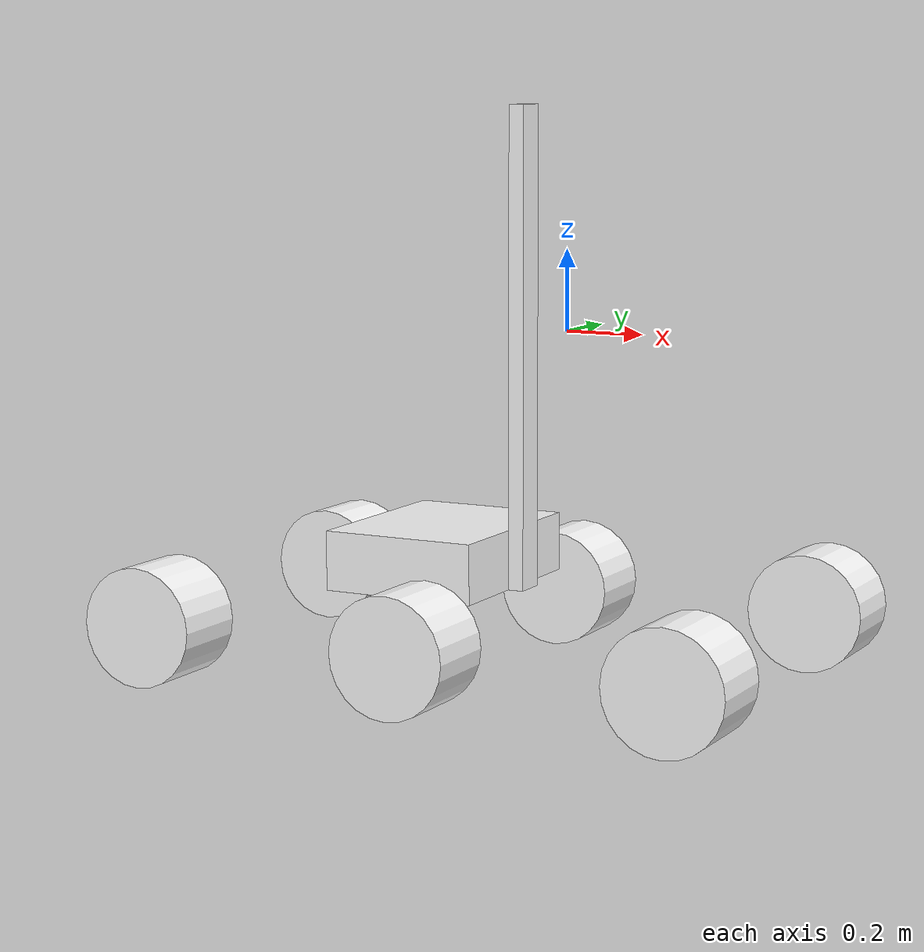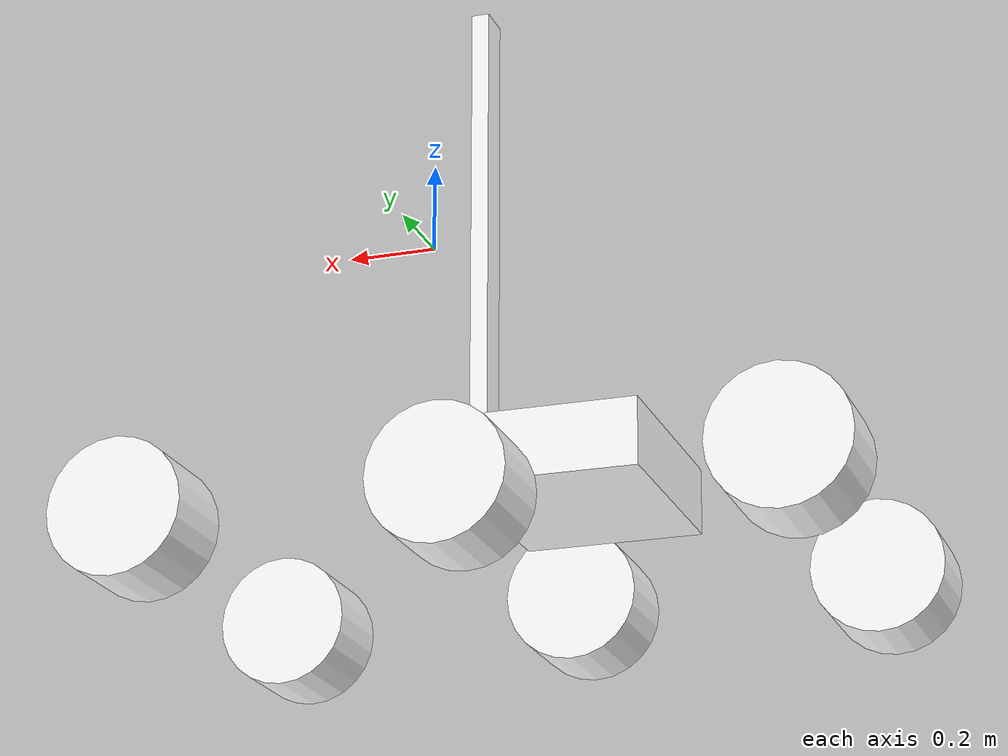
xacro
<?xml version="1.0" ?>
<robot name="rover" xmlns:xacro="http://ros.org/wiki/xacro">

  <!-- Created by Nelson Durrant, Mar 2025 -->

  <!-- Rover constants -->
  <xacro:property name="base_width" value="0.5"/>
  <xacro:property name="base_length" value="0.4"/>
  <xacro:property name="base_height" value="0.15"/>
  <!-- How far back the rover carriage is compared to the center of the middle wheel -->
  <xacro:property name="base_offset_x" value="0.135"/>
  <xacro:property name="wheel_radius" value="0.15"/>
  <xacro:property name="wheel_width" value="0.2"/>
  <!-- How far the center of the front wheel is from the center of the middle wheel -->
  <xacro:property name="wheel_xoff" value="0.7"/>
  <!-- How far the center of the wheel is from the outside of the base -->
  <xacro:property name="wheel_ygap" value="0.1"/>
  <!-- How far down the center of the wheels are from the base center -->
  <xacro:property name="wheel_zoff" value="0.15"/>
  <xacro:property name="pole_length" value="0.04"/>
  <xacro:property name="pole_width" value="0.08"/>
  <xacro:property name="pole_height" value="1.2"/>

  <!-- Rover base -->
  <link name="base_link">
    <visual>
      <geometry>
        <box size="${base_length} ${base_width} ${base_height}"/>
      </geometry>
      <material name="White">
        <color rgba="1 1 1 1"/>
      </material>
    </visual>
  </link>

  <!-- Rover wheels function -->
  <xacro:macro name="wheel" params="prefix x_reflect y_reflect wheel_pos">
    <link name="${prefix}_link">
      <visual>
        <origin xyz="0 0 0" rpy="${pi/2} 0 0"/>
        <geometry>
          <cylinder radius="${wheel_radius}" length="${wheel_width}"/>
        </geometry>
        <material name="White">
          <color rgba="1 1 1 1"/>
        </material>
      </visual>
    </link>

    <joint name="${prefix}_joint" type="fixed">
      <parent link="base_link"/>
      <child link="${prefix}_link"/>
      <origin xyz="${x_reflect*(wheel_xoff*(wheel_pos-1))+base_offset_x} ${y_reflect*(base_width/2+wheel_ygap+wheel_width/2)} ${-wheel_zoff}" rpy="0 0 0"/>
    </joint>
  </xacro:macro>

  <!-- Rover wheels -->
  <xacro:wheel prefix="wheel_left_front" x_reflect="-1" y_reflect="1" wheel_pos="0"/>
  <xacro:wheel prefix="wheel_left_middle" x_reflect="-1" y_reflect="1" wheel_pos="1"/>
  <xacro:wheel prefix="wheel_left_rear" x_reflect="-1" y_reflect="1" wheel_pos="2"/>
  <xacro:wheel prefix="wheel_right_front" x_reflect="-1" y_reflect="-1" wheel_pos="0"/>
  <xacro:wheel prefix="wheel_right_middle" x_reflect="-1" y_reflect="-1" wheel_pos="1"/>
  <xacro:wheel prefix="wheel_right_rear" x_reflect="-1" y_reflect="-1" wheel_pos="2"/>

  <!-- Antenna pole -->
  <link name="pole_link">
    <visual>
      <geometry>
        <box size="${pole_length} ${pole_width} ${pole_height}"/>
      </geometry>
      <material name="White">
        <color rgba="1 1 1 1"/>
      </material>
    </visual>
  </link>

  <joint name="pole_joint" type="fixed">
    <parent link="pole_link"/>
    <child link="base_link"/>
    <origin xyz="${-base_length/2-pole_length/2} 0 ${-pole_height/2+base_height/2}" rpy="0 0 0"/>
  </joint>

  <!-- Sensors -->
  <joint name="gps_joint" type="fixed">
    <parent link="base_link"/>
    <child link="gps_link"/>
    <origin xyz="${-base_length/2} 0 ${base_height/2}" rpy="0 0 0"/>
  </joint>

  <link name="gps_link"/>

  <joint name="aruco_cam_joint" type="fixed">
    <parent link="pole_link"/>
    <child link="aruco_cam_link"/>
    <origin xyz="${pole_length/2+0.1} 0 0.1" rpy="0 0 0"/>
  </joint>

  <link name="aruco_cam_link"/>

  <!-- https://github.com/unitreerobotics/unilidar_sdk/blob/main/unitree_lidar_ros2/src/unitree_lidar_ros2/README.md -->

  <joint name="unilidar_lidar_joint" type="fixed">
    <parent link="pole_link"/>
    <child link="unilidar_mount"/>
    <!-- the 'zed_lidar_calibrate' node handles the mount to sensor transform -->
    <origin xyz="${pole_length/2+0.1} 0 -0.05" rpy="0 ${pi/2} 0"/>
  </joint>

  <link name="unilidar_mount"/>

  <!-- https://www.stereolabs.com/docs/ros2/140_ros2-robot-integration -->

  <joint name="zed_camera_joint" type="fixed">
    <parent link="zed_camera_link"/>
    <child link="pole_link"/>
    <!-- the 'zed_lidar_calibrate' node handles the mount to sensor transform -->
    <origin xyz="${-pole_length/2-0.1} 0 -0.05" rpy="0 0 0"/>
  </joint>

  <link name="zed_camera_link"/>

</robot>
